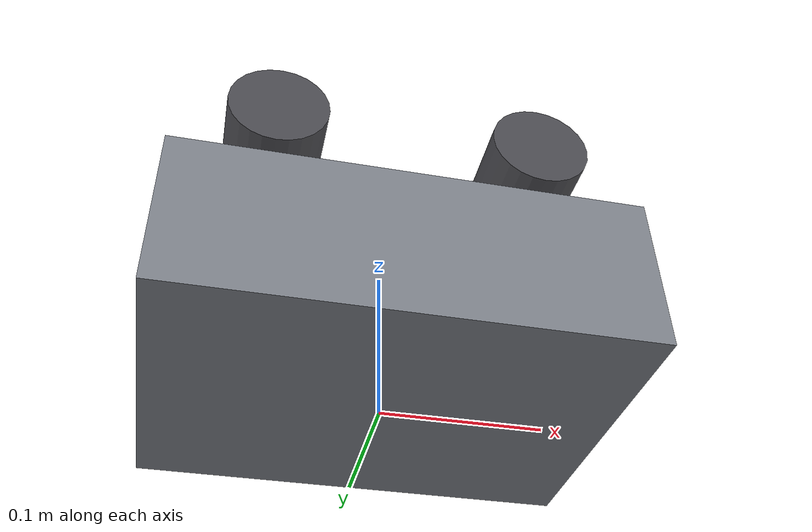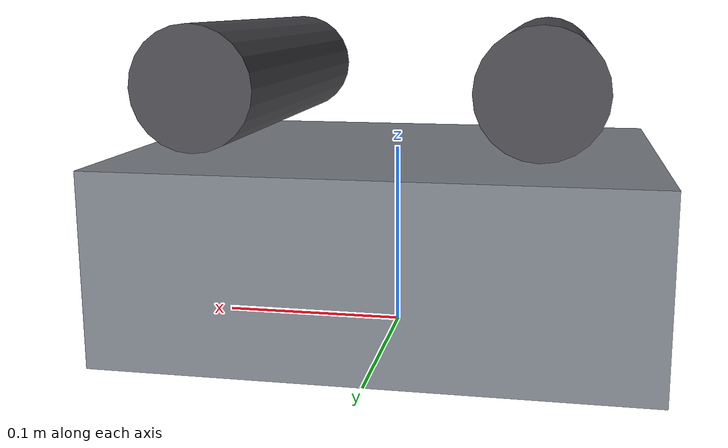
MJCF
<?xml version="1.0" encoding="utf-8"?>
<mujoco model="electrode_coating_machine">
  <compiler angle="radian" autolimits="true"/>
  <default>
    <default class="body"><geom contype="1" conaffinity="1"/></default>
  </default>
  <worldbody>
    <body name="base">
      <geom type="box" size="0.14 0.10 0.05" pos="0 0 0.05" rgba="0.5 0.52 0.55 1" class="body"/>
      <geom type="cylinder" size="0.03 0.10" pos="0.08 0 0.14" rgba="0.3 0.3 0.32 1" class="body" quat="0.7071068 0.7071068 0 0"/>
      <body name="roller" pos="-0.08 0 0.14">
        <joint name="roller_joint" type="hinge" axis="0 1 0" range="-3.14159 3.14159" damping="0.3" frictionloss="0.1"/>
  <geom type="cylinder" size="0.03 0.10" pos="0 0 0" rgba="0.3 0.3 0.32 1" class="body" quat="0.7071068 0.7071068 0 0"/>
      </body>
    </body>
  </worldbody>
</mujoco>
